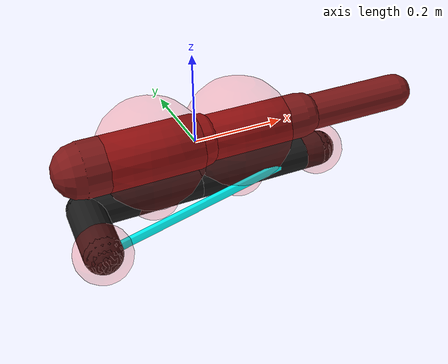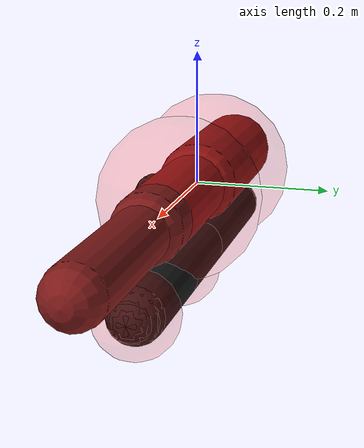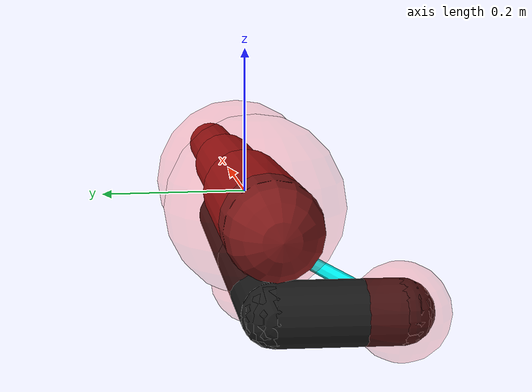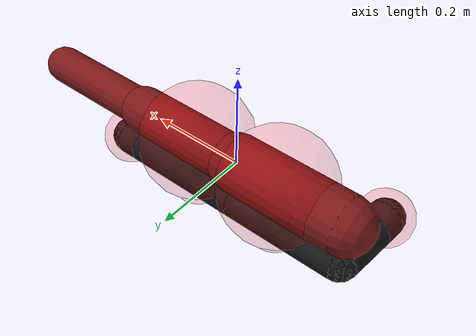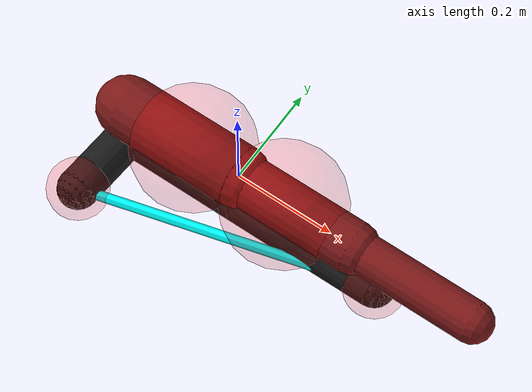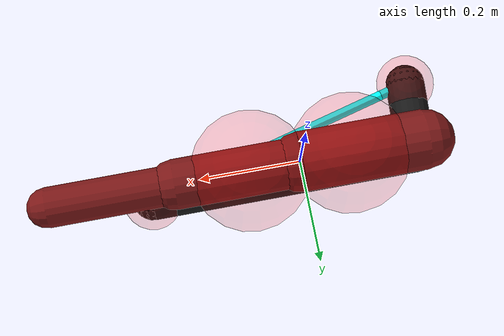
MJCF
<mujoco model="finger with orthotic">
    <option timestep="0.001" iterations="100" solver="Newton" tolerance="1e-8" integrator="implicitfast">
        <flag gravity="disable" contact="disable" energy="enable" />
    </option>

    <compiler angle="degree" />

    <visual>
        <rgba haze=".3 .3 .3 1" />
    </visual>

    <default>
        <joint type="hinge" pos="0 0 0" axis="0 0 1" stiffness="1.6000000000000003" damping="0.02" />
        <site size="0.06" rgba="1 0 0 .2" />
        <geom type="capsule" size="0.01" rgba=".1 .1 .1 1" />
        <tendon width="0.01" rgba="0 1 1 1" />
    </default>

    <asset>
        <texture type="skybox" builtin="gradient" rgb1="0.6 0.6 0.6" rgb2="0 0 0" width="512" height="512" />
        <texture name="texplane" type="2d" builtin="checker" rgb1=".25 .25 .25" rgb2=".3 .3 .3" width="512" height="512" mark="cross" markrgb=".8 .8 .8" />
        <material name="matplane" reflectance="0.3" texture="texplane" texrepeat="1 1" texuniform="true" />
    </asset>

    <worldbody>
        <light directional="true" diffuse=".8 .8 .8" specular=".2 .2 .2" pos="0 0 5" dir="0 0 -1" />
        <camera name="cam" pos="0 0 -1.2" xyaxes="1.000 0 0 0 -1.000 0" />

        <body name="finger" pos="0 0 0">
            <geom name="finger1" type="capsule" size="0.06" fromto="0 0 0  -.25 0 0" rgba=".5 .1 .1 1" />
            <site name="sPIPL" pos="-.1 0 0" size="0.12" />

            <body pos="0 0 0">
                <geom name="finger2" type="capsule" size="0.05" fromto="0 0 0  .25 0 0" rgba=".5 .1 .1 1" />
                <joint name="PIP" pos="0 0 0" stiffness="0" damping="0" />
                <site name="sPIPR" pos=".1 0 0" size="0.12" />

                <body pos=".25 0 0">
                    <geom name="finger3" type="capsule" size="0.04" fromto="0 0 0  .25 0 0" rgba=".5 .1 .1 1" />
                </body>
            </body>
        </body>

        <body name="orthosis" pos="0 0 -.1">
            <geom name="beamB" type="capsule" size="0.04" fromto="0.0 0.0 0.0 -0.25 -3.061616997868383e-17 0.0" />
            <site name="hBAL" pos="-.1 0 0" size="0.06" />

            <body name="Bnext" pos="0 0 0">
                <joint name="hingeBA" type="hinge" pos="0 0 0" axis="0 0 1" stiffness="1.6000000000000003" damping="0.02" />
                <site name="hBAR" pos=".1 0 0" size="0.06" />
                <geom name="beamA" type="capsule" size="0.04" fromto="0.0 0.0 0.0 0.3 0.0 0.0" />

                <body name="Anext" pos="0.3 0.0 0.0">
                    <joint name="hingeAL" type="hinge" pos="0 0 0" axis="0 0 1" stiffness="1.6000000000000003" damping="0.02" />
                    <geom name="smallBodyAL" type="sphere" size="0.04" pos="0 0 0" />
                    <site name="hAL" pos="0 0 0" size="0.06" />
                </body>
            </body>

            <geom name="beamD" type="capsule" size="0.04" fromto="-0.25 -3.061616997868383e-17 0.0 -0.2598076211353316 -0.15000000000000002 0.0" />
            <body name="Dnext" pos="-0.2598076211353316 -0.15000000000000002 0.0">
                <joint name="hingeDL" type="hinge" pos="0 0 0" axis="0 0 -1" stiffness="1.6000000000000003" damping="0.02" />
                <geom name="smallBodyDL" type="sphere" size="0.04" pos="0 0 0" />
                <site name="hDL" pos="0 0 0" size="0.06" />
            </body>
        </body>
    </worldbody>

    <equality>

        <weld site1="hBAR" site2="sPIPR" />

    </equality>

    <tendon>
        <spatial name="bendingTendon" limited="true" range="0.5215999461960968 1.1591109915468818" width="0.01" solimplimit="0 0.01 0.001 0.5 1" solreflimit="-0.03680981974791408 -0.00046012274684892595">
            <site site="hDL" />
            <site site="hAL" />
        </spatial>
        <spatial name="extensionTendon" limited="true" range="0 0.5795554957734409" width="0.01" solimplimit="0 0.01 0.001 0.5 1" solreflimit="-4417.1783697496885 -55.21472962187111">
            <site site="hDL" />
            <site site="hAL" />
        </spatial>
    </tendon>

    <actuator>
        <motor name="finger_bend" joint="PIP" ctrlrange="-10 10" gear="100" />
        <motor name="flexure_motor_BA" joint="hingeBA" gear="1" ctrlrange="0 0" />
        <motor name="flexure_motor_AL" joint="hingeAL" gear="1" ctrlrange="0 0" />
        <motor name="flexure_motor_DL" joint="hingeDL" gear="1" ctrlrange="0 0" />
        <motor name="tendon_nonlinear" tendon="bendingTendon" gear="1" ctrlrange="0 0" />
    </actuator>

    <sensor>
        <force name="finger_force" site="sPIPR" />
        <torque name="finger_torque" site="sPIPR" />
        <force name="tendon_force" site="hDL" />
    </sensor>
</mujoco>
